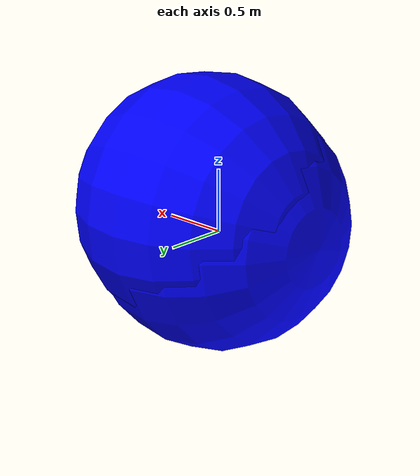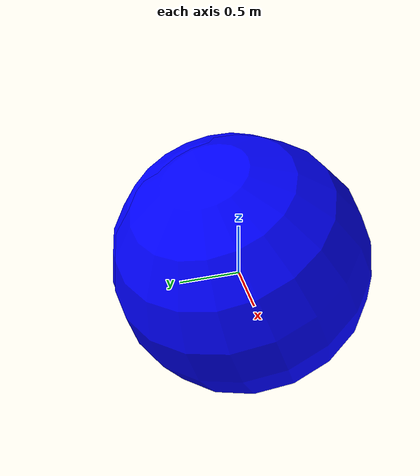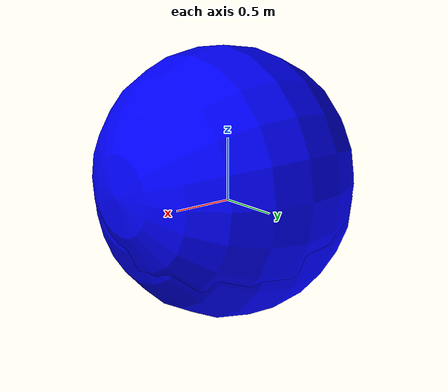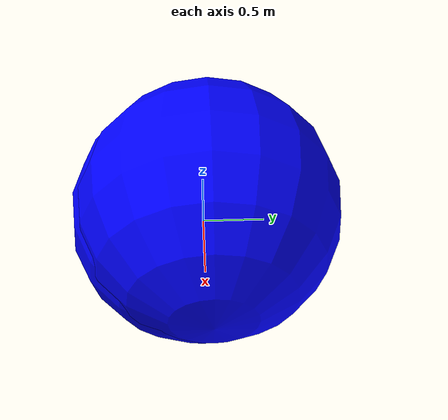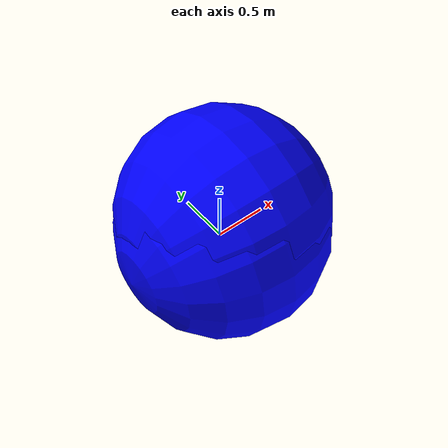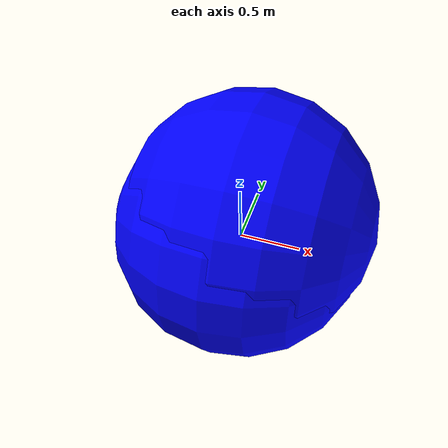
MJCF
<mujoco model="slider_sw">
    <compiler angle="radian" />
    <size njmax="500" nconmax="100" />
    <asset>
        <mesh name="base_link" file="./meshes/slider_sw/base_link.STL" />
        <mesh name="top_link" file="./meshes/slider_sw/top_link.STL" />
        <mesh name="slider_link" file="./meshes/slider_sw/slider_link.STL" />
    </asset>
    <worldbody>
        <body>
        <body name="object">
        <body name="base">
        <geom type="mesh" rgba="0.79216 0.81961 0.93333 1" mesh="base_link" contype="0" group="1"/>
        <body name="top_link" pos="0.019609 0.14738 0.1474" quat="0.499998 0.5 0.500002 0.5">
            <inertial pos="-0.093935 0.049344 0.058002" quat="0.708027 -0.00408805 -0.00409188 0.706162" mass="0.28443" diaginertia="0.000504461 0.000406727 0.000201172" />
            <joint name="top_joint" pos="0 0 0" axis="0 0 -1" limited="true" range="0 1.57" />
            <geom type="mesh" rgba="0.79216 0.81961 0.93333 1" mesh="top_link" contype="0" group="1"/>
            <site name="top_handle" pos="-0.103 0.075 0.057" size="1.02" rgba="0 0 1 1" />
        </body>
        <body name="slider_link" pos="0.009525 0 0.0889" quat="0.499998 -0.5 0.500002 -0.5">
            <inertial pos="0.014979 -0.0077014 0.010112" quat="0.403054 0.580988 -0.580988 0.403054" mass="0.019201" diaginertia="6.84616e-06 6.3796e-06 4.91554e-06" />
            <joint name="slider_joint" pos="0 0 0" axis="0 0 1" type="slide" limited="true" range="0 0.06" />
            <geom type="mesh" rgba="0.79216 0.81961 0.93333 1" mesh="slider_link" contype="0" group="1"/>
            <site name="slide_handle" pos="0.025 -0.005 0.007" size="1.02" rgba="0 0 1 1" />
        </body>
        </body>
        </body>
        <site name="bottom_site" pos="0 0 -0.3" rgba="0 0 0 0" size="0.005"/>
        <site name="top_site" pos="0 0 0.3" rgba="0 0 0 0" size="0.005"/>
        <site name="horizontal_radius_site" pos="0.3 0 0" rgba="0 0 0 0" size="0.1"/>
        </body>
    </worldbody>
    <contact>
        <exclude name="exclude_2_body_0" body1="base" body2="top_link"/>
    </contact>
</mujoco>
